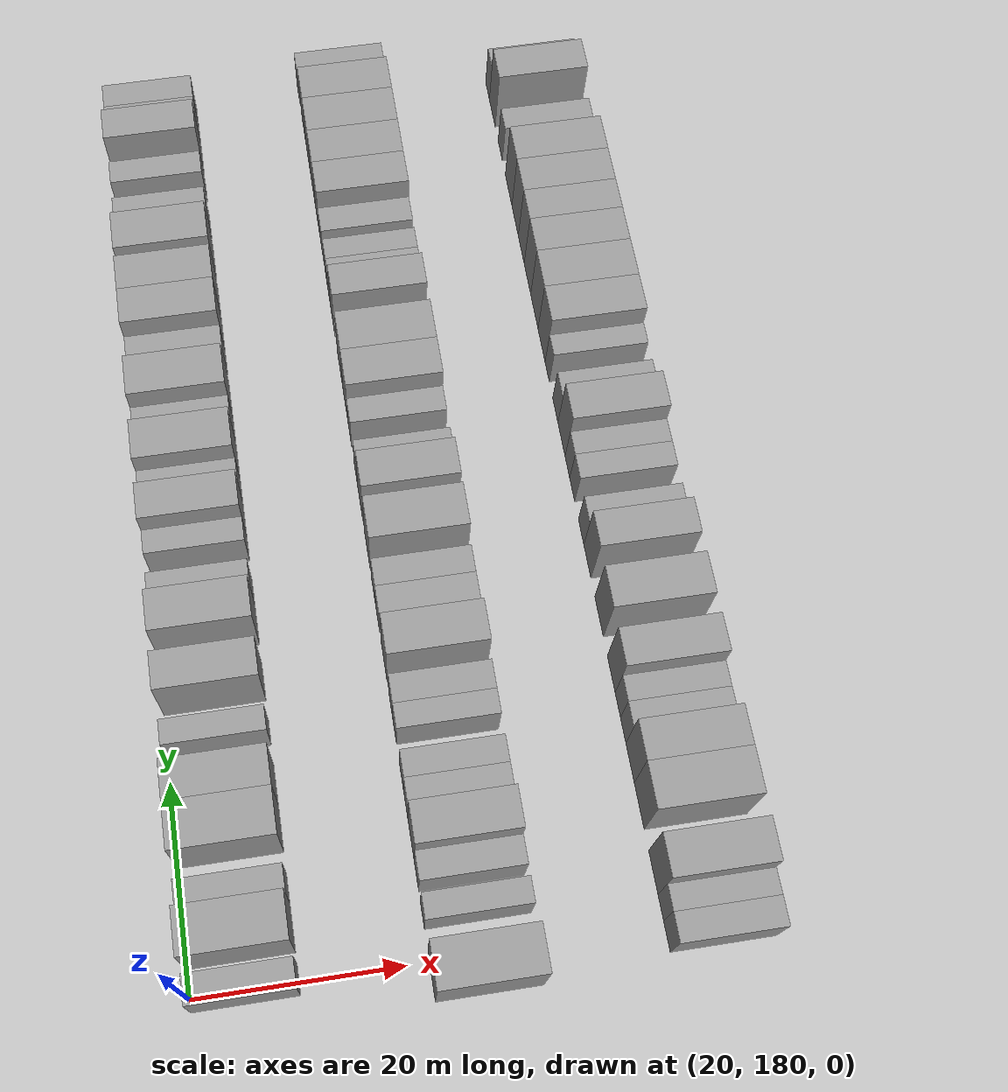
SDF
<sdf version="1.6">
 <world name="default">
  <model name="building_146">
   <static>1</static>
   <pose>25.0000 180.2762 0 0.000000 0.000000 0.000000</pose>
   <link name="link">
    <pose>0 0 3.00 0 0 0</pose>
    <collision name="collision"><geometry><box><size>10.0000 2.7897 6.0000</size></box></geometry></collision>
    <visual name="visual">
     <cast_shadows>0</cast_shadows>
     <geometry><box><size>10.0000 2.7897 6.0000</size></box></geometry>
     <material>
      <script>
       <uri>model://grey_wall/materials/scripts</uri>
       <uri>model://grey_wall/materials/textures</uri>
       <name>vrc/grey_wall</name>
      </script>
     </material>
    </visual>
   </link>
  </model>
  <model name="building_147">
   <static>1</static>
   <pose>25.0000 184.8887 0 0.000000 0.000000 0.000000</pose>
   <link name="link">
    <pose>0 0 4.50 0 0 0</pose>
    <collision name="collision"><geometry><box><size>10.0000 4.4352 9.0000</size></box></geometry></collision>
    <visual name="visual">
     <cast_shadows>0</cast_shadows>
     <geometry><box><size>10.0000 4.4352 9.0000</size></box></geometry>
     <material>
      <script>
       <uri>model://grey_wall/materials/scripts</uri>
       <uri>model://grey_wall/materials/textures</uri>
       <name>vrc/grey_wall</name>
      </script>
     </material>
    </visual>
   </link>
  </model>
  <model name="building_148">
   <static>1</static>
   <pose>25.0000 188.4868 0 0.000000 0.000000 0.000000</pose>
   <link name="link">
    <pose>0 0 3.00 0 0 0</pose>
    <collision name="collision"><geometry><box><size>10.0000 2.7611 6.0000</size></box></geometry></collision>
    <visual name="visual">
     <cast_shadows>0</cast_shadows>
     <geometry><box><size>10.0000 2.7611 6.0000</size></box></geometry>
     <material>
      <script>
       <uri>model://grey_wall/materials/scripts</uri>
       <uri>model://grey_wall/materials/textures</uri>
       <name>vrc/grey_wall</name>
      </script>
     </material>
    </visual>
   </link>
  </model>
  <model name="building_149">
   <static>1</static>
   <pose>25.0000 194.1086 0 0.000000 0.000000 0.000000</pose>
   <link name="link">
    <pose>0 0 4.50 0 0 0</pose>
    <collision name="collision"><geometry><box><size>10.0000 4.4825 9.0000</size></box></geometry></collision>
    <visual name="visual">
     <cast_shadows>0</cast_shadows>
     <geometry><box><size>10.0000 4.4825 9.0000</size></box></geometry>
     <material>
      <script>
       <uri>model://grey_wall/materials/scripts</uri>
       <uri>model://grey_wall/materials/textures</uri>
       <name>vrc/grey_wall</name>
      </script>
     </material>
    </visual>
   </link>
  </model>
  <model name="building_150">
   <static>1</static>
   <pose>25.0000 198.2959 0 0.000000 0.000000 0.000000</pose>
   <link name="link">
    <pose>0 0 4.50 0 0 0</pose>
    <collision name="collision"><geometry><box><size>10.0000 3.8920 9.0000</size></box></geometry></collision>
    <visual name="visual">
     <cast_shadows>0</cast_shadows>
     <geometry><box><size>10.0000 3.8920 9.0000</size></box></geometry>
     <material>
      <script>
       <uri>model://grey_wall/materials/scripts</uri>
       <uri>model://grey_wall/materials/textures</uri>
       <name>vrc/grey_wall</name>
      </script>
     </material>
    </visual>
   </link>
  </model>
  <model name="building_151">
   <static>1</static>
   <pose>25.0000 203.4770 0 0.000000 0.000000 0.000000</pose>
   <link name="link">
    <pose>0 0 3.00 0 0 0</pose>
    <collision name="collision"><geometry><box><size>10.0000 2.4702 6.0000</size></box></geometry></collision>
    <visual name="visual">
     <cast_shadows>0</cast_shadows>
     <geometry><box><size>10.0000 2.4702 6.0000</size></box></geometry>
     <material>
      <script>
       <uri>model://grey_wall/materials/scripts</uri>
       <uri>model://grey_wall/materials/textures</uri>
       <name>vrc/grey_wall</name>
      </script>
     </material>
    </visual>
   </link>
  </model>
  <model name="building_152">
   <static>1</static>
   <pose>25.0000 208.6117 0 0.000000 0.000000 0.000000</pose>
   <link name="link">
    <pose>0 0 4.50 0 0 0</pose>
    <collision name="collision"><geometry><box><size>10.0000 3.7992 9.0000</size></box></geometry></collision>
    <visual name="visual">
     <cast_shadows>0</cast_shadows>
     <geometry><box><size>10.0000 3.7992 9.0000</size></box></geometry>
     <material>
      <script>
       <uri>model://grey_wall/materials/scripts</uri>
       <uri>model://grey_wall/materials/textures</uri>
       <name>vrc/grey_wall</name>
      </script>
     </material>
    </visual>
   </link>
  </model>
  <model name="building_153">
   <static>1</static>
   <pose>25.0000 214.5991 0 0.000000 0.000000 0.000000</pose>
   <link name="link">
    <pose>0 0 4.50 0 0 0</pose>
    <collision name="collision"><geometry><box><size>10.0000 4.1758 9.0000</size></box></geometry></collision>
    <visual name="visual">
     <cast_shadows>0</cast_shadows>
     <geometry><box><size>10.0000 4.1758 9.0000</size></box></geometry>
     <material>
      <script>
       <uri>model://grey_wall/materials/scripts</uri>
       <uri>model://grey_wall/materials/textures</uri>
       <name>vrc/grey_wall</name>
      </script>
     </material>
    </visual>
   </link>
  </model>
  <model name="building_154">
   <static>1</static>
   <pose>25.0000 218.0930 0 0.000000 0.000000 0.000000</pose>
   <link name="link">
    <pose>0 0 3.00 0 0 0</pose>
    <collision name="collision"><geometry><box><size>10.0000 2.8120 6.0000</size></box></geometry></collision>
    <visual name="visual">
     <cast_shadows>0</cast_shadows>
     <geometry><box><size>10.0000 2.8120 6.0000</size></box></geometry>
     <material>
      <script>
       <uri>model://grey_wall/materials/scripts</uri>
       <uri>model://grey_wall/materials/textures</uri>
       <name>vrc/grey_wall</name>
      </script>
     </material>
    </visual>
   </link>
  </model>
  <model name="building_155">
   <static>1</static>
   <pose>25.0000 222.7590 0 0.000000 0.000000 0.000000</pose>
   <link name="link">
    <pose>0 0 3.00 0 0 0</pose>
    <collision name="collision"><geometry><box><size>10.0000 2.5200 6.0000</size></box></geometry></collision>
    <visual name="visual">
     <cast_shadows>0</cast_shadows>
     <geometry><box><size>10.0000 2.5200 6.0000</size></box></geometry>
     <material>
      <script>
       <uri>model://grey_wall/materials/scripts</uri>
       <uri>model://grey_wall/materials/textures</uri>
       <name>vrc/grey_wall</name>
      </script>
     </material>
    </visual>
   </link>
  </model>
  <model name="building_156">
   <static>1</static>
   <pose>25.0000 225.9309 0 0.000000 0.000000 0.000000</pose>
   <link name="link">
    <pose>0 0 4.50 0 0 0</pose>
    <collision name="collision"><geometry><box><size>10.0000 3.8239 9.0000</size></box></geometry></collision>
    <visual name="visual">
     <cast_shadows>0</cast_shadows>
     <geometry><box><size>10.0000 3.8239 9.0000</size></box></geometry>
     <material>
      <script>
       <uri>model://grey_wall/materials/scripts</uri>
       <uri>model://grey_wall/materials/textures</uri>
       <name>vrc/grey_wall</name>
      </script>
     </material>
    </visual>
   </link>
  </model>
  <model name="building_157">
   <static>1</static>
   <pose>25.0000 229.1659 0 0.000000 0.000000 0.000000</pose>
   <link name="link">
    <pose>0 0 3.00 0 0 0</pose>
    <collision name="collision"><geometry><box><size>10.0000 2.6459 6.0000</size></box></geometry></collision>
    <visual name="visual">
     <cast_shadows>0</cast_shadows>
     <geometry><box><size>10.0000 2.6459 6.0000</size></box></geometry>
     <material>
      <script>
       <uri>model://grey_wall/materials/scripts</uri>
       <uri>model://grey_wall/materials/textures</uri>
       <name>vrc/grey_wall</name>
      </script>
     </material>
    </visual>
   </link>
  </model>
  <model name="building_158">
   <static>1</static>
   <pose>25.0000 232.6386 0 0.000000 0.000000 0.000000</pose>
   <link name="link">
    <pose>0 0 4.50 0 0 0</pose>
    <collision name="collision"><geometry><box><size>10.0000 4.2995 9.0000</size></box></geometry></collision>
    <visual name="visual">
     <cast_shadows>0</cast_shadows>
     <geometry><box><size>10.0000 4.2995 9.0000</size></box></geometry>
     <material>
      <script>
       <uri>model://grey_wall/materials/scripts</uri>
       <uri>model://grey_wall/materials/textures</uri>
       <name>vrc/grey_wall</name>
      </script>
     </material>
    </visual>
   </link>
  </model>
  <model name="building_159">
   <static>1</static>
   <pose>25.0000 236.2185 0 0.000000 0.000000 0.000000</pose>
   <link name="link">
    <pose>0 0 3.00 0 0 0</pose>
    <collision name="collision"><geometry><box><size>10.0000 2.8604 6.0000</size></box></geometry></collision>
    <visual name="visual">
     <cast_shadows>0</cast_shadows>
     <geometry><box><size>10.0000 2.8604 6.0000</size></box></geometry>
     <material>
      <script>
       <uri>model://grey_wall/materials/scripts</uri>
       <uri>model://grey_wall/materials/textures</uri>
       <name>vrc/grey_wall</name>
      </script>
     </material>
    </visual>
   </link>
  </model>
  <model name="building_160">
   <static>1</static>
   <pose>25.0000 239.8670 0 0.000000 0.000000 0.000000</pose>
   <link name="link">
    <pose>0 0 4.50 0 0 0</pose>
    <collision name="collision"><geometry><box><size>10.0000 4.4365 9.0000</size></box></geometry></collision>
    <visual name="visual">
     <cast_shadows>0</cast_shadows>
     <geometry><box><size>10.0000 4.4365 9.0000</size></box></geometry>
     <material>
      <script>
       <uri>model://grey_wall/materials/scripts</uri>
       <uri>model://grey_wall/materials/textures</uri>
       <name>vrc/grey_wall</name>
      </script>
     </material>
    </visual>
   </link>
  </model>
  <model name="building_161">
   <static>1</static>
   <pose>25.0000 244.5406 0 0.000000 0.000000 0.000000</pose>
   <link name="link">
    <pose>0 0 3.00 0 0 0</pose>
    <collision name="collision"><geometry><box><size>10.0000 2.9107 6.0000</size></box></geometry></collision>
    <visual name="visual">
     <cast_shadows>0</cast_shadows>
     <geometry><box><size>10.0000 2.9107 6.0000</size></box></geometry>
     <material>
      <script>
       <uri>model://grey_wall/materials/scripts</uri>
       <uri>model://grey_wall/materials/textures</uri>
       <name>vrc/grey_wall</name>
      </script>
     </material>
    </visual>
   </link>
  </model>
  <model name="building_162">
   <static>1</static>
   <pose>25.0000 248.0260 0 0.000000 0.000000 0.000000</pose>
   <link name="link">
    <pose>0 0 4.50 0 0 0</pose>
    <collision name="collision"><geometry><box><size>10.0000 4.0600 9.0000</size></box></geometry></collision>
    <visual name="visual">
     <cast_shadows>0</cast_shadows>
     <geometry><box><size>10.0000 4.0600 9.0000</size></box></geometry>
     <material>
      <script>
       <uri>model://grey_wall/materials/scripts</uri>
       <uri>model://grey_wall/materials/textures</uri>
       <name>vrc/grey_wall</name>
      </script>
     </material>
    </visual>
   </link>
  </model>
  <model name="building_163">
   <static>1</static>
   <pose>25.0000 252.0669 0 0.000000 0.000000 0.000000</pose>
   <link name="link">
    <pose>0 0 4.50 0 0 0</pose>
    <collision name="collision"><geometry><box><size>10.0000 4.0218 9.0000</size></box></geometry></collision>
    <visual name="visual">
     <cast_shadows>0</cast_shadows>
     <geometry><box><size>10.0000 4.0218 9.0000</size></box></geometry>
     <material>
      <script>
       <uri>model://grey_wall/materials/scripts</uri>
       <uri>model://grey_wall/materials/textures</uri>
       <name>vrc/grey_wall</name>
      </script>
     </material>
    </visual>
   </link>
  </model>
  <model name="building_164">
   <static>1</static>
   <pose>25.0000 257.2943 0 0.000000 0.000000 0.000000</pose>
   <link name="link">
    <pose>0 0 4.50 0 0 0</pose>
    <collision name="collision"><geometry><box><size>10.0000 4.4331 9.0000</size></box></geometry></collision>
    <visual name="visual">
     <cast_shadows>0</cast_shadows>
     <geometry><box><size>10.0000 4.4331 9.0000</size></box></geometry>
     <material>
      <script>
       <uri>model://grey_wall/materials/scripts</uri>
       <uri>model://grey_wall/materials/textures</uri>
       <name>vrc/grey_wall</name>
      </script>
     </material>
    </visual>
   </link>
  </model>
  <model name="building_165">
   <static>1</static>
   <pose>25.0000 261.9774 0 0.000000 0.000000 0.000000</pose>
   <link name="link">
    <pose>0 0 3.00 0 0 0</pose>
    <collision name="collision"><geometry><box><size>10.0000 2.9332 6.0000</size></box></geometry></collision>
    <visual name="visual">
     <cast_shadows>0</cast_shadows>
     <geometry><box><size>10.0000 2.9332 6.0000</size></box></geometry>
     <material>
      <script>
       <uri>model://grey_wall/materials/scripts</uri>
       <uri>model://grey_wall/materials/textures</uri>
       <name>vrc/grey_wall</name>
      </script>
     </material>
    </visual>
   </link>
  </model>
  <model name="building_166">
   <static>1</static>
   <pose>25.0000 266.8244 0 0.000000 0.000000 0.000000</pose>
   <link name="link">
    <pose>0 0 3.00 0 0 0</pose>
    <collision name="collision"><geometry><box><size>10.0000 2.7608 6.0000</size></box></geometry></collision>
    <visual name="visual">
     <cast_shadows>0</cast_shadows>
     <geometry><box><size>10.0000 2.7608 6.0000</size></box></geometry>
     <material>
      <script>
       <uri>model://grey_wall/materials/scripts</uri>
       <uri>model://grey_wall/materials/textures</uri>
       <name>vrc/grey_wall</name>
      </script>
     </material>
    </visual>
   </link>
  </model>
  <model name="building_167">
   <static>1</static>
   <pose>25.0000 271.0900 0 0.000000 0.000000 0.000000</pose>
   <link name="link">
    <pose>0 0 4.50 0 0 0</pose>
    <collision name="collision"><geometry><box><size>10.0000 3.7704 9.0000</size></box></geometry></collision>
    <visual name="visual">
     <cast_shadows>0</cast_shadows>
     <geometry><box><size>10.0000 3.7704 9.0000</size></box></geometry>
     <material>
      <script>
       <uri>model://grey_wall/materials/scripts</uri>
       <uri>model://grey_wall/materials/textures</uri>
       <name>vrc/grey_wall</name>
      </script>
     </material>
    </visual>
   </link>
  </model>
  <model name="building_168">
   <static>1</static>
   <pose>25.0000 274.3409 0 0.000000 0.000000 0.000000</pose>
   <link name="link">
    <pose>0 0 3.00 0 0 0</pose>
    <collision name="collision"><geometry><box><size>10.0000 2.7313 6.0000</size></box></geometry></collision>
    <visual name="visual">
     <cast_shadows>0</cast_shadows>
     <geometry><box><size>10.0000 2.7313 6.0000</size></box></geometry>
     <material>
      <script>
       <uri>model://grey_wall/materials/scripts</uri>
       <uri>model://grey_wall/materials/textures</uri>
       <name>vrc/grey_wall</name>
      </script>
     </material>
    </visual>
   </link>
  </model>
  <model name="building_169">
   <static>1</static>
   <pose>25.0000 277.1735 0 0.000000 0.000000 0.000000</pose>
   <link name="link">
    <pose>0 0 3.00 0 0 0</pose>
    <collision name="collision"><geometry><box><size>10.0000 2.9341 6.0000</size></box></geometry></collision>
    <visual name="visual">
     <cast_shadows>0</cast_shadows>
     <geometry><box><size>10.0000 2.9341 6.0000</size></box></geometry>
     <material>
      <script>
       <uri>model://grey_wall/materials/scripts</uri>
       <uri>model://grey_wall/materials/textures</uri>
       <name>vrc/grey_wall</name>
      </script>
     </material>
    </visual>
   </link>
  </model>
  <model name="building_328">
   <static>1</static>
   <pose>47.0000 178.7338 0 0.000000 0.000000 0.000000</pose>
   <link name="link">
    <pose>0 0 4.50 0 0 0</pose>
    <collision name="collision"><geometry><box><size>10.0000 4.4576 9.0000</size></box></geometry></collision>
    <visual name="visual">
     <cast_shadows>0</cast_shadows>
     <geometry><box><size>10.0000 4.4576 9.0000</size></box></geometry>
     <material>
      <script>
       <uri>model://grey_wall/materials/scripts</uri>
       <uri>model://grey_wall/materials/textures</uri>
       <name>vrc/grey_wall</name>
      </script>
     </material>
    </visual>
   </link>
  </model>
  <model name="building_329">
   <static>1</static>
   <pose>47.0000 184.1841 0 0.000000 0.000000 0.000000</pose>
   <link name="link">
    <pose>0 0 3.00 0 0 0</pose>
    <collision name="collision"><geometry><box><size>10.0000 2.4431 6.0000</size></box></geometry></collision>
    <visual name="visual">
     <cast_shadows>0</cast_shadows>
     <geometry><box><size>10.0000 2.4431 6.0000</size></box></geometry>
     <material>
      <script>
       <uri>model://grey_wall/materials/scripts</uri>
       <uri>model://grey_wall/materials/textures</uri>
       <name>vrc/grey_wall</name>
      </script>
     </material>
    </visual>
   </link>
  </model>
  <model name="building_330">
   <static>1</static>
   <pose>47.0000 187.7777 0 0.000000 0.000000 0.000000</pose>
   <link name="link">
    <pose>0 0 3.00 0 0 0</pose>
    <collision name="collision"><geometry><box><size>10.0000 2.7441 6.0000</size></box></geometry></collision>
    <visual name="visual">
     <cast_shadows>0</cast_shadows>
     <geometry><box><size>10.0000 2.7441 6.0000</size></box></geometry>
     <material>
      <script>
       <uri>model://grey_wall/materials/scripts</uri>
       <uri>model://grey_wall/materials/textures</uri>
       <name>vrc/grey_wall</name>
      </script>
     </material>
    </visual>
   </link>
  </model>
  <model name="building_331">
   <static>1</static>
   <pose>47.0000 191.1143 0 0.000000 0.000000 0.000000</pose>
   <link name="link">
    <pose>0 0 4.50 0 0 0</pose>
    <collision name="collision"><geometry><box><size>10.0000 3.9290 9.0000</size></box></geometry></collision>
    <visual name="visual">
     <cast_shadows>0</cast_shadows>
     <geometry><box><size>10.0000 3.9290 9.0000</size></box></geometry>
     <material>
      <script>
       <uri>model://grey_wall/materials/scripts</uri>
       <uri>model://grey_wall/materials/textures</uri>
       <name>vrc/grey_wall</name>
      </script>
     </material>
    </visual>
   </link>
  </model>
  <model name="building_332">
   <static>1</static>
   <pose>47.0000 194.4727 0 0.000000 0.000000 0.000000</pose>
   <link name="link">
    <pose>0 0 3.00 0 0 0</pose>
    <collision name="collision"><geometry><box><size>10.0000 2.7879 6.0000</size></box></geometry></collision>
    <visual name="visual">
     <cast_shadows>0</cast_shadows>
     <geometry><box><size>10.0000 2.7879 6.0000</size></box></geometry>
     <material>
      <script>
       <uri>model://grey_wall/materials/scripts</uri>
       <uri>model://grey_wall/materials/textures</uri>
       <name>vrc/grey_wall</name>
      </script>
     </material>
    </visual>
   </link>
  </model>
  <model name="building_333">
   <static>1</static>
   <pose>47.0000 197.1919 0 0.000000 0.000000 0.000000</pose>
   <link name="link">
    <pose>0 0 3.00 0 0 0</pose>
    <collision name="collision"><geometry><box><size>10.0000 2.6504 6.0000</size></box></geometry></collision>
    <visual name="visual">
     <cast_shadows>0</cast_shadows>
     <geometry><box><size>10.0000 2.6504 6.0000</size></box></geometry>
     <material>
      <script>
       <uri>model://grey_wall/materials/scripts</uri>
       <uri>model://grey_wall/materials/textures</uri>
       <name>vrc/grey_wall</name>
      </script>
     </material>
    </visual>
   </link>
  </model>
  <model name="building_334">
   <static>1</static>
   <pose>47.0000 201.7520 0 0.000000 0.000000 0.000000</pose>
   <link name="link">
    <pose>0 0 3.00 0 0 0</pose>
    <collision name="collision"><geometry><box><size>10.0000 2.4699 6.0000</size></box></geometry></collision>
    <visual name="visual">
     <cast_shadows>0</cast_shadows>
     <geometry><box><size>10.0000 2.4699 6.0000</size></box></geometry>
     <material>
      <script>
       <uri>model://grey_wall/materials/scripts</uri>
       <uri>model://grey_wall/materials/textures</uri>
       <name>vrc/grey_wall</name>
      </script>
     </material>
    </visual>
   </link>
  </model>
  <model name="building_335">
   <static>1</static>
   <pose>47.0000 204.4269 0 0.000000 0.000000 0.000000</pose>
   <link name="link">
    <pose>0 0 3.00 0 0 0</pose>
    <collision name="collision"><geometry><box><size>10.0000 2.8798 6.0000</size></box></geometry></collision>
    <visual name="visual">
     <cast_shadows>0</cast_shadows>
     <geometry><box><size>10.0000 2.8798 6.0000</size></box></geometry>
     <material>
      <script>
       <uri>model://grey_wall/materials/scripts</uri>
       <uri>model://grey_wall/materials/textures</uri>
       <name>vrc/grey_wall</name>
      </script>
     </material>
    </visual>
   </link>
  </model>
  <model name="building_336">
   <static>1</static>
   <pose>47.0000 208.9249 0 0.000000 0.000000 0.000000</pose>
   <link name="link">
    <pose>0 0 4.50 0 0 0</pose>
    <collision name="collision"><geometry><box><size>10.0000 4.1162 9.0000</size></box></geometry></collision>
    <visual name="visual">
     <cast_shadows>0</cast_shadows>
     <geometry><box><size>10.0000 4.1162 9.0000</size></box></geometry>
     <material>
      <script>
       <uri>model://grey_wall/materials/scripts</uri>
       <uri>model://grey_wall/materials/textures</uri>
       <name>vrc/grey_wall</name>
      </script>
     </material>
    </visual>
   </link>
  </model>
  <model name="building_337">
   <static>1</static>
   <pose>47.0000 213.4071 0 0.000000 0.000000 0.000000</pose>
   <link name="link">
    <pose>0 0 3.00 0 0 0</pose>
    <collision name="collision"><geometry><box><size>10.0000 2.8483 6.0000</size></box></geometry></collision>
    <visual name="visual">
     <cast_shadows>0</cast_shadows>
     <geometry><box><size>10.0000 2.8483 6.0000</size></box></geometry>
     <material>
      <script>
       <uri>model://grey_wall/materials/scripts</uri>
       <uri>model://grey_wall/materials/textures</uri>
       <name>vrc/grey_wall</name>
      </script>
     </material>
    </visual>
   </link>
  </model>
  <model name="building_338">
   <static>1</static>
   <pose>47.0000 216.2558 0 0.000000 0.000000 0.000000</pose>
   <link name="link">
    <pose>0 0 3.00 0 0 0</pose>
    <collision name="collision"><geometry><box><size>10.0000 2.8491 6.0000</size></box></geometry></collision>
    <visual name="visual">
     <cast_shadows>0</cast_shadows>
     <geometry><box><size>10.0000 2.8491 6.0000</size></box></geometry>
     <material>
      <script>
       <uri>model://grey_wall/materials/scripts</uri>
       <uri>model://grey_wall/materials/textures</uri>
       <name>vrc/grey_wall</name>
      </script>
     </material>
    </visual>
   </link>
  </model>
  <model name="building_339">
   <static>1</static>
   <pose>47.0000 220.9137 0 0.000000 0.000000 0.000000</pose>
   <link name="link">
    <pose>0 0 4.50 0 0 0</pose>
    <collision name="collision"><geometry><box><size>10.0000 4.4667 9.0000</size></box></geometry></collision>
    <visual name="visual">
     <cast_shadows>0</cast_shadows>
     <geometry><box><size>10.0000 4.4667 9.0000</size></box></geometry>
     <material>
      <script>
       <uri>model://grey_wall/materials/scripts</uri>
       <uri>model://grey_wall/materials/textures</uri>
       <name>vrc/grey_wall</name>
      </script>
     </material>
    </visual>
   </link>
  </model>
  <model name="building_340">
   <static>1</static>
   <pose>47.0000 226.0977 0 0.000000 0.000000 0.000000</pose>
   <link name="link">
    <pose>0 0 4.50 0 0 0</pose>
    <collision name="collision"><geometry><box><size>10.0000 3.9013 9.0000</size></box></geometry></collision>
    <visual name="visual">
     <cast_shadows>0</cast_shadows>
     <geometry><box><size>10.0000 3.9013 9.0000</size></box></geometry>
     <material>
      <script>
       <uri>model://grey_wall/materials/scripts</uri>
       <uri>model://grey_wall/materials/textures</uri>
       <name>vrc/grey_wall</name>
      </script>
     </material>
    </visual>
   </link>
  </model>
  <model name="building_341">
   <static>1</static>
   <pose>47.0000 229.3383 0 0.000000 0.000000 0.000000</pose>
   <link name="link">
    <pose>0 0 3.00 0 0 0</pose>
    <collision name="collision"><geometry><box><size>10.0000 2.5798 6.0000</size></box></geometry></collision>
    <visual name="visual">
     <cast_shadows>0</cast_shadows>
     <geometry><box><size>10.0000 2.5798 6.0000</size></box></geometry>
     <material>
      <script>
       <uri>model://grey_wall/materials/scripts</uri>
       <uri>model://grey_wall/materials/textures</uri>
       <name>vrc/grey_wall</name>
      </script>
     </material>
    </visual>
   </link>
  </model>
  <model name="building_342">
   <static>1</static>
   <pose>47.0000 234.0190 0 0.000000 0.000000 0.000000</pose>
   <link name="link">
    <pose>0 0 3.00 0 0 0</pose>
    <collision name="collision"><geometry><box><size>10.0000 2.7816 6.0000</size></box></geometry></collision>
    <visual name="visual">
     <cast_shadows>0</cast_shadows>
     <geometry><box><size>10.0000 2.7816 6.0000</size></box></geometry>
     <material>
      <script>
       <uri>model://grey_wall/materials/scripts</uri>
       <uri>model://grey_wall/materials/textures</uri>
       <name>vrc/grey_wall</name>
      </script>
     </material>
    </visual>
   </link>
  </model>
  <model name="building_343">
   <static>1</static>
   <pose>47.0000 237.4681 0 0.000000 0.000000 0.000000</pose>
   <link name="link">
    <pose>0 0 4.50 0 0 0</pose>
    <collision name="collision"><geometry><box><size>10.0000 4.1166 9.0000</size></box></geometry></collision>
    <visual name="visual">
     <cast_shadows>0</cast_shadows>
     <geometry><box><size>10.0000 4.1166 9.0000</size></box></geometry>
     <material>
      <script>
       <uri>model://grey_wall/materials/scripts</uri>
       <uri>model://grey_wall/materials/textures</uri>
       <name>vrc/grey_wall</name>
      </script>
     </material>
    </visual>
   </link>
  </model>
  <model name="building_344">
   <static>1</static>
   <pose>47.0000 241.7662 0 0.000000 0.000000 0.000000</pose>
   <link name="link">
    <pose>0 0 4.50 0 0 0</pose>
    <collision name="collision"><geometry><box><size>10.0000 4.4795 9.0000</size></box></geometry></collision>
    <visual name="visual">
     <cast_shadows>0</cast_shadows>
     <geometry><box><size>10.0000 4.4795 9.0000</size></box></geometry>
     <material>
      <script>
       <uri>model://grey_wall/materials/scripts</uri>
       <uri>model://grey_wall/materials/textures</uri>
       <name>vrc/grey_wall</name>
      </script>
     </material>
    </visual>
   </link>
  </model>
  <model name="building_345">
   <static>1</static>
   <pose>47.0000 247.8381 0 0.000000 0.000000 0.000000</pose>
   <link name="link">
    <pose>0 0 4.50 0 0 0</pose>
    <collision name="collision"><geometry><box><size>10.0000 3.6643 9.0000</size></box></geometry></collision>
    <visual name="visual">
     <cast_shadows>0</cast_shadows>
     <geometry><box><size>10.0000 3.6643 9.0000</size></box></geometry>
     <material>
      <script>
       <uri>model://grey_wall/materials/scripts</uri>
       <uri>model://grey_wall/materials/textures</uri>
       <name>vrc/grey_wall</name>
      </script>
     </material>
    </visual>
   </link>
  </model>
  <model name="building_346">
   <static>1</static>
   <pose>47.0000 250.9982 0 0.000000 0.000000 0.000000</pose>
   <link name="link">
    <pose>0 0 3.00 0 0 0</pose>
    <collision name="collision"><geometry><box><size>10.0000 2.6559 6.0000</size></box></geometry></collision>
    <visual name="visual">
     <cast_shadows>0</cast_shadows>
     <geometry><box><size>10.0000 2.6559 6.0000</size></box></geometry>
     <material>
      <script>
       <uri>model://grey_wall/materials/scripts</uri>
       <uri>model://grey_wall/materials/textures</uri>
       <name>vrc/grey_wall</name>
      </script>
     </material>
    </visual>
   </link>
  </model>
  <model name="building_347">
   <static>1</static>
   <pose>47.0000 253.5662 0 0.000000 0.000000 0.000000</pose>
   <link name="link">
    <pose>0 0 3.00 0 0 0</pose>
    <collision name="collision"><geometry><box><size>10.0000 2.4802 6.0000</size></box></geometry></collision>
    <visual name="visual">
     <cast_shadows>0</cast_shadows>
     <geometry><box><size>10.0000 2.4802 6.0000</size></box></geometry>
     <material>
      <script>
       <uri>model://grey_wall/materials/scripts</uri>
       <uri>model://grey_wall/materials/textures</uri>
       <name>vrc/grey_wall</name>
      </script>
     </material>
    </visual>
   </link>
  </model>
  <model name="building_348">
   <static>1</static>
   <pose>47.0000 257.2979 0 0.000000 0.000000 0.000000</pose>
   <link name="link">
    <pose>0 0 3.00 0 0 0</pose>
    <collision name="collision"><geometry><box><size>10.0000 2.9831 6.0000</size></box></geometry></collision>
    <visual name="visual">
     <cast_shadows>0</cast_shadows>
     <geometry><box><size>10.0000 2.9831 6.0000</size></box></geometry>
     <material>
      <script>
       <uri>model://grey_wall/materials/scripts</uri>
       <uri>model://grey_wall/materials/textures</uri>
       <name>vrc/grey_wall</name>
      </script>
     </material>
    </visual>
   </link>
  </model>
  <model name="building_349">
   <static>1</static>
   <pose>47.0000 260.7665 0 0.000000 0.000000 0.000000</pose>
   <link name="link">
    <pose>0 0 4.50 0 0 0</pose>
    <collision name="collision"><geometry><box><size>10.0000 3.9541 9.0000</size></box></geometry></collision>
    <visual name="visual">
     <cast_shadows>0</cast_shadows>
     <geometry><box><size>10.0000 3.9541 9.0000</size></box></geometry>
     <material>
      <script>
       <uri>model://grey_wall/materials/scripts</uri>
       <uri>model://grey_wall/materials/textures</uri>
       <name>vrc/grey_wall</name>
      </script>
     </material>
    </visual>
   </link>
  </model>
  <model name="building_350">
   <static>1</static>
   <pose>47.0000 264.8565 0 0.000000 0.000000 0.000000</pose>
   <link name="link">
    <pose>0 0 4.50 0 0 0</pose>
    <collision name="collision"><geometry><box><size>10.0000 4.2259 9.0000</size></box></geometry></collision>
    <visual name="visual">
     <cast_shadows>0</cast_shadows>
     <geometry><box><size>10.0000 4.2259 9.0000</size></box></geometry>
     <material>
      <script>
       <uri>model://grey_wall/materials/scripts</uri>
       <uri>model://grey_wall/materials/textures</uri>
       <name>vrc/grey_wall</name>
      </script>
     </material>
    </visual>
   </link>
  </model>
  <model name="building_351">
   <static>1</static>
   <pose>47.0000 269.1509 0 0.000000 0.000000 0.000000</pose>
   <link name="link">
    <pose>0 0 4.50 0 0 0</pose>
    <collision name="collision"><geometry><box><size>10.0000 4.3629 9.0000</size></box></geometry></collision>
    <visual name="visual">
     <cast_shadows>0</cast_shadows>
     <geometry><box><size>10.0000 4.3629 9.0000</size></box></geometry>
     <material>
      <script>
       <uri>model://grey_wall/materials/scripts</uri>
       <uri>model://grey_wall/materials/textures</uri>
       <name>vrc/grey_wall</name>
      </script>
     </material>
    </visual>
   </link>
  </model>
  <model name="building_352">
   <static>1</static>
   <pose>47.0000 273.4350 0 0.000000 0.000000 0.000000</pose>
   <link name="link">
    <pose>0 0 4.50 0 0 0</pose>
    <collision name="collision"><geometry><box><size>10.0000 4.2053 9.0000</size></box></geometry></collision>
    <visual name="visual">
     <cast_shadows>0</cast_shadows>
     <geometry><box><size>10.0000 4.2053 9.0000</size></box></geometry>
     <material>
      <script>
       <uri>model://grey_wall/materials/scripts</uri>
       <uri>model://grey_wall/materials/textures</uri>
       <name>vrc/grey_wall</name>
      </script>
     </material>
    </visual>
   </link>
  </model>
  <model name="building_353">
   <static>1</static>
   <pose>47.0000 278.7621 0 0.000000 0.000000 0.000000</pose>
   <link name="link">
    <pose>0 0 3.00 0 0 0</pose>
    <collision name="collision"><geometry><box><size>10.0000 2.4488 6.0000</size></box></geometry></collision>
    <visual name="visual">
     <cast_shadows>0</cast_shadows>
     <geometry><box><size>10.0000 2.4488 6.0000</size></box></geometry>
     <material>
      <script>
       <uri>model://grey_wall/materials/scripts</uri>
       <uri>model://grey_wall/materials/textures</uri>
       <name>vrc/grey_wall</name>
      </script>
     </material>
    </visual>
   </link>
  </model>
  <model name="building_523">
   <static>1</static>
   <pose>69.0000 178.9867 0 0.000000 0.000000 0.000000</pose>
   <link name="link">
    <pose>0 0 3.00 0 0 0</pose>
    <collision name="collision"><geometry><box><size>10.0000 2.7928 6.0000</size></box></geometry></collision>
    <visual name="visual">
     <cast_shadows>0</cast_shadows>
     <geometry><box><size>10.0000 2.7928 6.0000</size></box></geometry>
     <material>
      <script>
       <uri>model://grey_wall/materials/scripts</uri>
       <uri>model://grey_wall/materials/textures</uri>
       <name>vrc/grey_wall</name>
      </script>
     </material>
    </visual>
   </link>
  </model>
  <model name="building_524">
   <static>1</static>
   <pose>69.0000 181.6063 0 0.000000 0.000000 0.000000</pose>
   <link name="link">
    <pose>0 0 3.00 0 0 0</pose>
    <collision name="collision"><geometry><box><size>10.0000 2.4462 6.0000</size></box></geometry></collision>
    <visual name="visual">
     <cast_shadows>0</cast_shadows>
     <geometry><box><size>10.0000 2.4462 6.0000</size></box></geometry>
     <material>
      <script>
       <uri>model://grey_wall/materials/scripts</uri>
       <uri>model://grey_wall/materials/textures</uri>
       <name>vrc/grey_wall</name>
      </script>
     </material>
    </visual>
   </link>
  </model>
  <model name="building_525">
   <static>1</static>
   <pose>69.0000 184.8749 0 0.000000 0.000000 0.000000</pose>
   <link name="link">
    <pose>0 0 4.50 0 0 0</pose>
    <collision name="collision"><geometry><box><size>10.0000 4.0911 9.0000</size></box></geometry></collision>
    <visual name="visual">
     <cast_shadows>0</cast_shadows>
     <geometry><box><size>10.0000 4.0911 9.0000</size></box></geometry>
     <material>
      <script>
       <uri>model://grey_wall/materials/scripts</uri>
       <uri>model://grey_wall/materials/textures</uri>
       <name>vrc/grey_wall</name>
      </script>
     </material>
    </visual>
   </link>
  </model>
  <model name="building_526">
   <static>1</static>
   <pose>69.0000 191.1650 0 0.000000 0.000000 0.000000</pose>
   <link name="link">
    <pose>0 0 4.50 0 0 0</pose>
    <collision name="collision"><geometry><box><size>10.0000 4.4891 9.0000</size></box></geometry></collision>
    <visual name="visual">
     <cast_shadows>0</cast_shadows>
     <geometry><box><size>10.0000 4.4891 9.0000</size></box></geometry>
     <material>
      <script>
       <uri>model://grey_wall/materials/scripts</uri>
       <uri>model://grey_wall/materials/textures</uri>
       <name>vrc/grey_wall</name>
      </script>
     </material>
    </visual>
   </link>
  </model>
  <model name="building_527">
   <static>1</static>
   <pose>69.0000 195.3666 0 0.000000 0.000000 0.000000</pose>
   <link name="link">
    <pose>0 0 4.50 0 0 0</pose>
    <collision name="collision"><geometry><box><size>10.0000 3.9140 9.0000</size></box></geometry></collision>
    <visual name="visual">
     <cast_shadows>0</cast_shadows>
     <geometry><box><size>10.0000 3.9140 9.0000</size></box></geometry>
     <material>
      <script>
       <uri>model://grey_wall/materials/scripts</uri>
       <uri>model://grey_wall/materials/textures</uri>
       <name>vrc/grey_wall</name>
      </script>
     </material>
    </visual>
   </link>
  </model>
  <model name="building_528">
   <static>1</static>
   <pose>69.0000 198.5885 0 0.000000 0.000000 0.000000</pose>
   <link name="link">
    <pose>0 0 3.00 0 0 0</pose>
    <collision name="collision"><geometry><box><size>10.0000 2.5299 6.0000</size></box></geometry></collision>
    <visual name="visual">
     <cast_shadows>0</cast_shadows>
     <geometry><box><size>10.0000 2.5299 6.0000</size></box></geometry>
     <material>
      <script>
       <uri>model://grey_wall/materials/scripts</uri>
       <uri>model://grey_wall/materials/textures</uri>
       <name>vrc/grey_wall</name>
      </script>
     </material>
    </visual>
   </link>
  </model>
  <model name="building_529">
   <static>1</static>
   <pose>69.0000 201.1320 0 0.000000 0.000000 0.000000</pose>
   <link name="link">
    <pose>0 0 3.00 0 0 0</pose>
    <collision name="collision"><geometry><box><size>10.0000 2.5570 6.0000</size></box></geometry></collision>
    <visual name="visual">
     <cast_shadows>0</cast_shadows>
     <geometry><box><size>10.0000 2.5570 6.0000</size></box></geometry>
     <material>
      <script>
       <uri>model://grey_wall/materials/scripts</uri>
       <uri>model://grey_wall/materials/textures</uri>
       <name>vrc/grey_wall</name>
      </script>
     </material>
    </visual>
   </link>
  </model>
  <model name="building_530">
   <static>1</static>
   <pose>69.0000 204.3224 0 0.000000 0.000000 0.000000</pose>
   <link name="link">
    <pose>0 0 4.50 0 0 0</pose>
    <collision name="collision"><geometry><box><size>10.0000 3.8239 9.0000</size></box></geometry></collision>
    <visual name="visual">
     <cast_shadows>0</cast_shadows>
     <geometry><box><size>10.0000 3.8239 9.0000</size></box></geometry>
     <material>
      <script>
       <uri>model://grey_wall/materials/scripts</uri>
       <uri>model://grey_wall/materials/textures</uri>
       <name>vrc/grey_wall</name>
      </script>
     </material>
    </visual>
   </link>
  </model>
  <model name="building_531">
   <static>1</static>
   <pose>69.0000 210.3717 0 0.000000 0.000000 0.000000</pose>
   <link name="link">
    <pose>0 0 4.50 0 0 0</pose>
    <collision name="collision"><geometry><box><size>10.0000 4.2746 9.0000</size></box></geometry></collision>
    <visual name="visual">
     <cast_shadows>0</cast_shadows>
     <geometry><box><size>10.0000 4.2746 9.0000</size></box></geometry>
     <material>
      <script>
       <uri>model://grey_wall/materials/scripts</uri>
       <uri>model://grey_wall/materials/textures</uri>
       <name>vrc/grey_wall</name>
      </script>
     </material>
    </visual>
   </link>
  </model>
  <model name="building_532">
   <static>1</static>
   <pose>69.0000 216.3532 0 0.000000 0.000000 0.000000</pose>
   <link name="link">
    <pose>0 0 4.50 0 0 0</pose>
    <collision name="collision"><geometry><box><size>10.0000 3.6883 9.0000</size></box></geometry></collision>
    <visual name="visual">
     <cast_shadows>0</cast_shadows>
     <geometry><box><size>10.0000 3.6883 9.0000</size></box></geometry>
     <material>
      <script>
       <uri>model://grey_wall/materials/scripts</uri>
       <uri>model://grey_wall/materials/textures</uri>
       <name>vrc/grey_wall</name>
      </script>
     </material>
    </visual>
   </link>
  </model>
  <model name="building_533">
   <static>1</static>
   <pose>69.0000 219.6190 0 0.000000 0.000000 0.000000</pose>
   <link name="link">
    <pose>0 0 3.00 0 0 0</pose>
    <collision name="collision"><geometry><box><size>10.0000 2.8432 6.0000</size></box></geometry></collision>
    <visual name="visual">
     <cast_shadows>0</cast_shadows>
     <geometry><box><size>10.0000 2.8432 6.0000</size></box></geometry>
     <material>
      <script>
       <uri>model://grey_wall/materials/scripts</uri>
       <uri>model://grey_wall/materials/textures</uri>
       <name>vrc/grey_wall</name>
      </script>
     </material>
    </visual>
   </link>
  </model>
  <model name="building_534">
   <static>1</static>
   <pose>69.0000 224.3897 0 0.000000 0.000000 0.000000</pose>
   <link name="link">
    <pose>0 0 3.00 0 0 0</pose>
    <collision name="collision"><geometry><box><size>10.0000 2.6981 6.0000</size></box></geometry></collision>
    <visual name="visual">
     <cast_shadows>0</cast_shadows>
     <geometry><box><size>10.0000 2.6981 6.0000</size></box></geometry>
     <material>
      <script>
       <uri>model://grey_wall/materials/scripts</uri>
       <uri>model://grey_wall/materials/textures</uri>
       <name>vrc/grey_wall</name>
      </script>
     </material>
    </visual>
   </link>
  </model>
  <model name="building_535">
   <static>1</static>
   <pose>69.0000 227.0105 0 0.000000 0.000000 0.000000</pose>
   <link name="link">
    <pose>0 0 3.00 0 0 0</pose>
    <collision name="collision"><geometry><box><size>10.0000 2.5435 6.0000</size></box></geometry></collision>
    <visual name="visual">
     <cast_shadows>0</cast_shadows>
     <geometry><box><size>10.0000 2.5435 6.0000</size></box></geometry>
     <material>
      <script>
       <uri>model://grey_wall/materials/scripts</uri>
       <uri>model://grey_wall/materials/textures</uri>
       <name>vrc/grey_wall</name>
      </script>
     </material>
    </visual>
   </link>
  </model>
  <model name="building_536">
   <static>1</static>
   <pose>69.0000 230.2603 0 0.000000 0.000000 0.000000</pose>
   <link name="link">
    <pose>0 0 4.50 0 0 0</pose>
    <collision name="collision"><geometry><box><size>10.0000 3.9562 9.0000</size></box></geometry></collision>
    <visual name="visual">
     <cast_shadows>0</cast_shadows>
     <geometry><box><size>10.0000 3.9562 9.0000</size></box></geometry>
     <material>
      <script>
       <uri>model://grey_wall/materials/scripts</uri>
       <uri>model://grey_wall/materials/textures</uri>
       <name>vrc/grey_wall</name>
      </script>
     </material>
    </visual>
   </link>
  </model>
  <model name="building_537">
   <static>1</static>
   <pose>69.0000 233.7092 0 0.000000 0.000000 0.000000</pose>
   <link name="link">
    <pose>0 0 3.00 0 0 0</pose>
    <collision name="collision"><geometry><box><size>10.0000 2.9415 6.0000</size></box></geometry></collision>
    <visual name="visual">
     <cast_shadows>0</cast_shadows>
     <geometry><box><size>10.0000 2.9415 6.0000</size></box></geometry>
     <material>
      <script>
       <uri>model://grey_wall/materials/scripts</uri>
       <uri>model://grey_wall/materials/textures</uri>
       <name>vrc/grey_wall</name>
      </script>
     </material>
    </visual>
   </link>
  </model>
  <model name="building_538">
   <static>1</static>
   <pose>69.0000 238.3922 0 0.000000 0.000000 0.000000</pose>
   <link name="link">
    <pose>0 0 3.00 0 0 0</pose>
    <collision name="collision"><geometry><box><size>10.0000 2.4243 6.0000</size></box></geometry></collision>
    <visual name="visual">
     <cast_shadows>0</cast_shadows>
     <geometry><box><size>10.0000 2.4243 6.0000</size></box></geometry>
     <material>
      <script>
       <uri>model://grey_wall/materials/scripts</uri>
       <uri>model://grey_wall/materials/textures</uri>
       <name>vrc/grey_wall</name>
      </script>
     </material>
    </visual>
   </link>
  </model>
  <model name="building_539">
   <static>1</static>
   <pose>69.0000 241.6808 0 0.000000 0.000000 0.000000</pose>
   <link name="link">
    <pose>0 0 4.50 0 0 0</pose>
    <collision name="collision"><geometry><box><size>10.0000 4.1530 9.0000</size></box></geometry></collision>
    <visual name="visual">
     <cast_shadows>0</cast_shadows>
     <geometry><box><size>10.0000 4.1530 9.0000</size></box></geometry>
     <material>
      <script>
       <uri>model://grey_wall/materials/scripts</uri>
       <uri>model://grey_wall/materials/textures</uri>
       <name>vrc/grey_wall</name>
      </script>
     </material>
    </visual>
   </link>
  </model>
  <model name="building_540">
   <static>1</static>
   <pose>69.0000 245.9499 0 0.000000 0.000000 0.000000</pose>
   <link name="link">
    <pose>0 0 4.50 0 0 0</pose>
    <collision name="collision"><geometry><box><size>10.0000 4.3853 9.0000</size></box></geometry></collision>
    <visual name="visual">
     <cast_shadows>0</cast_shadows>
     <geometry><box><size>10.0000 4.3853 9.0000</size></box></geometry>
     <material>
      <script>
       <uri>model://grey_wall/materials/scripts</uri>
       <uri>model://grey_wall/materials/textures</uri>
       <name>vrc/grey_wall</name>
      </script>
     </material>
    </visual>
   </link>
  </model>
  <model name="building_541">
   <static>1</static>
   <pose>69.0000 250.1425 0 0.000000 0.000000 0.000000</pose>
   <link name="link">
    <pose>0 0 4.50 0 0 0</pose>
    <collision name="collision"><geometry><box><size>10.0000 3.9998 9.0000</size></box></geometry></collision>
    <visual name="visual">
     <cast_shadows>0</cast_shadows>
     <geometry><box><size>10.0000 3.9998 9.0000</size></box></geometry>
     <material>
      <script>
       <uri>model://grey_wall/materials/scripts</uri>
       <uri>model://grey_wall/materials/textures</uri>
       <name>vrc/grey_wall</name>
      </script>
     </material>
    </visual>
   </link>
  </model>
  <model name="building_542">
   <static>1</static>
   <pose>69.0000 253.9665 0 0.000000 0.000000 0.000000</pose>
   <link name="link">
    <pose>0 0 4.50 0 0 0</pose>
    <collision name="collision"><geometry><box><size>10.0000 3.6483 9.0000</size></box></geometry></collision>
    <visual name="visual">
     <cast_shadows>0</cast_shadows>
     <geometry><box><size>10.0000 3.6483 9.0000</size></box></geometry>
     <material>
      <script>
       <uri>model://grey_wall/materials/scripts</uri>
       <uri>model://grey_wall/materials/textures</uri>
       <name>vrc/grey_wall</name>
      </script>
     </material>
    </visual>
   </link>
  </model>
  <model name="building_543">
   <static>1</static>
   <pose>69.0000 257.8092 0 0.000000 0.000000 0.000000</pose>
   <link name="link">
    <pose>0 0 4.50 0 0 0</pose>
    <collision name="collision"><geometry><box><size>10.0000 4.0371 9.0000</size></box></geometry></collision>
    <visual name="visual">
     <cast_shadows>0</cast_shadows>
     <geometry><box><size>10.0000 4.0371 9.0000</size></box></geometry>
     <material>
      <script>
       <uri>model://grey_wall/materials/scripts</uri>
       <uri>model://grey_wall/materials/textures</uri>
       <name>vrc/grey_wall</name>
      </script>
     </material>
    </visual>
   </link>
  </model>
  <model name="building_544">
   <static>1</static>
   <pose>69.0000 261.9507 0 0.000000 0.000000 0.000000</pose>
   <link name="link">
    <pose>0 0 4.50 0 0 0</pose>
    <collision name="collision"><geometry><box><size>10.0000 4.2457 9.0000</size></box></geometry></collision>
    <visual name="visual">
     <cast_shadows>0</cast_shadows>
     <geometry><box><size>10.0000 4.2457 9.0000</size></box></geometry>
     <material>
      <script>
       <uri>model://grey_wall/materials/scripts</uri>
       <uri>model://grey_wall/materials/textures</uri>
       <name>vrc/grey_wall</name>
      </script>
     </material>
    </visual>
   </link>
  </model>
  <model name="building_545">
   <static>1</static>
   <pose>69.0000 267.4516 0 0.000000 0.000000 0.000000</pose>
   <link name="link">
    <pose>0 0 3.00 0 0 0</pose>
    <collision name="collision"><geometry><box><size>10.0000 2.7561 6.0000</size></box></geometry></collision>
    <visual name="visual">
     <cast_shadows>0</cast_shadows>
     <geometry><box><size>10.0000 2.7561 6.0000</size></box></geometry>
     <material>
      <script>
       <uri>model://grey_wall/materials/scripts</uri>
       <uri>model://grey_wall/materials/textures</uri>
       <name>vrc/grey_wall</name>
      </script>
     </material>
    </visual>
   </link>
  </model>
  <model name="building_546">
   <static>1</static>
   <pose>69.0000 272.7742 0 0.000000 0.000000 0.000000</pose>
   <link name="link">
    <pose>0 0 4.50 0 0 0</pose>
    <collision name="collision"><geometry><box><size>10.0000 3.8892 9.0000</size></box></geometry></collision>
    <visual name="visual">
     <cast_shadows>0</cast_shadows>
     <geometry><box><size>10.0000 3.8892 9.0000</size></box></geometry>
     <material>
      <script>
       <uri>model://grey_wall/materials/scripts</uri>
       <uri>model://grey_wall/materials/textures</uri>
       <name>vrc/grey_wall</name>
      </script>
     </material>
    </visual>
   </link>
  </model>
  <model name="building_547">
   <static>1</static>
   <pose>69.0000 275.9908 0 0.000000 0.000000 0.000000</pose>
   <link name="link">
    <pose>0 0 3.00 0 0 0</pose>
    <collision name="collision"><geometry><box><size>10.0000 2.5441 6.0000</size></box></geometry></collision>
    <visual name="visual">
     <cast_shadows>0</cast_shadows>
     <geometry><box><size>10.0000 2.5441 6.0000</size></box></geometry>
     <material>
      <script>
       <uri>model://grey_wall/materials/scripts</uri>
       <uri>model://grey_wall/materials/textures</uri>
       <name>vrc/grey_wall</name>
      </script>
     </material>
    </visual>
   </link>
  </model>
 </world>
</sdf>
